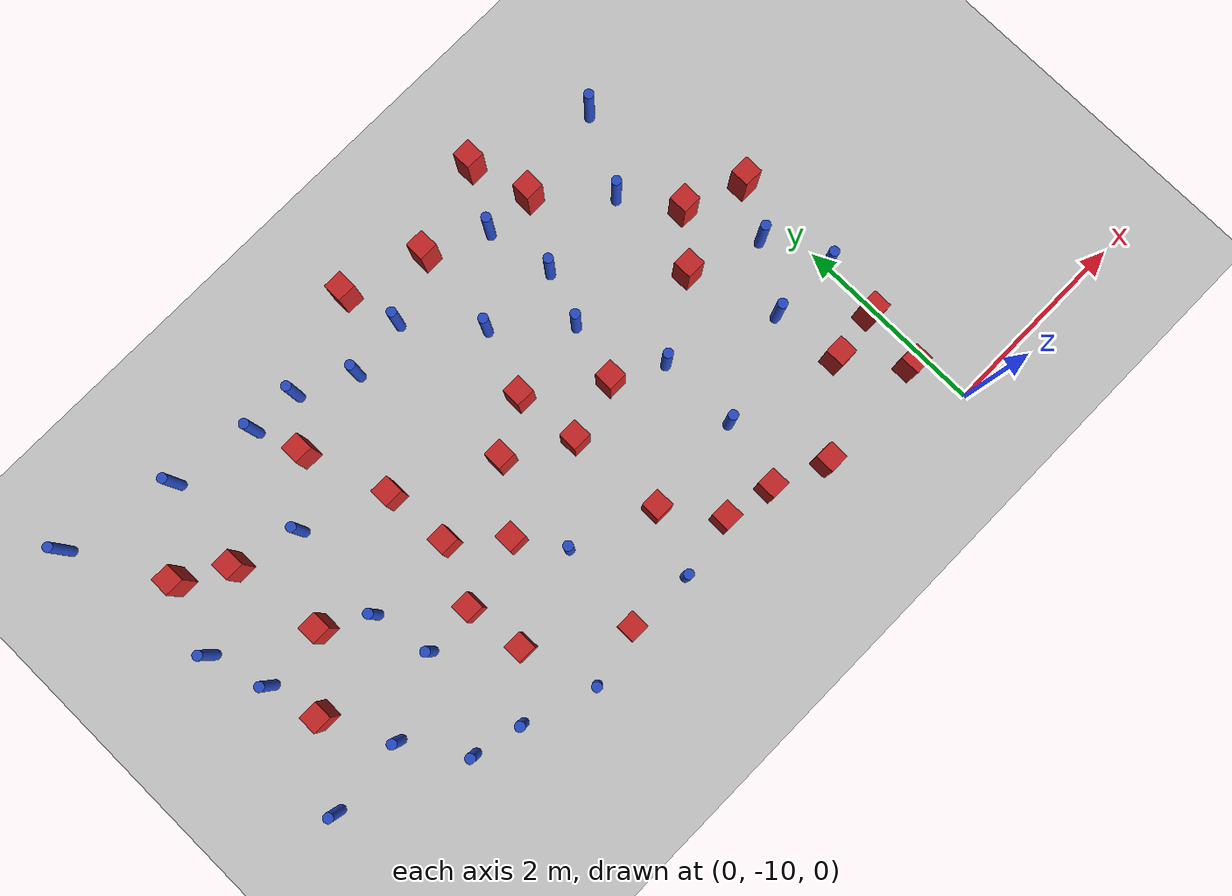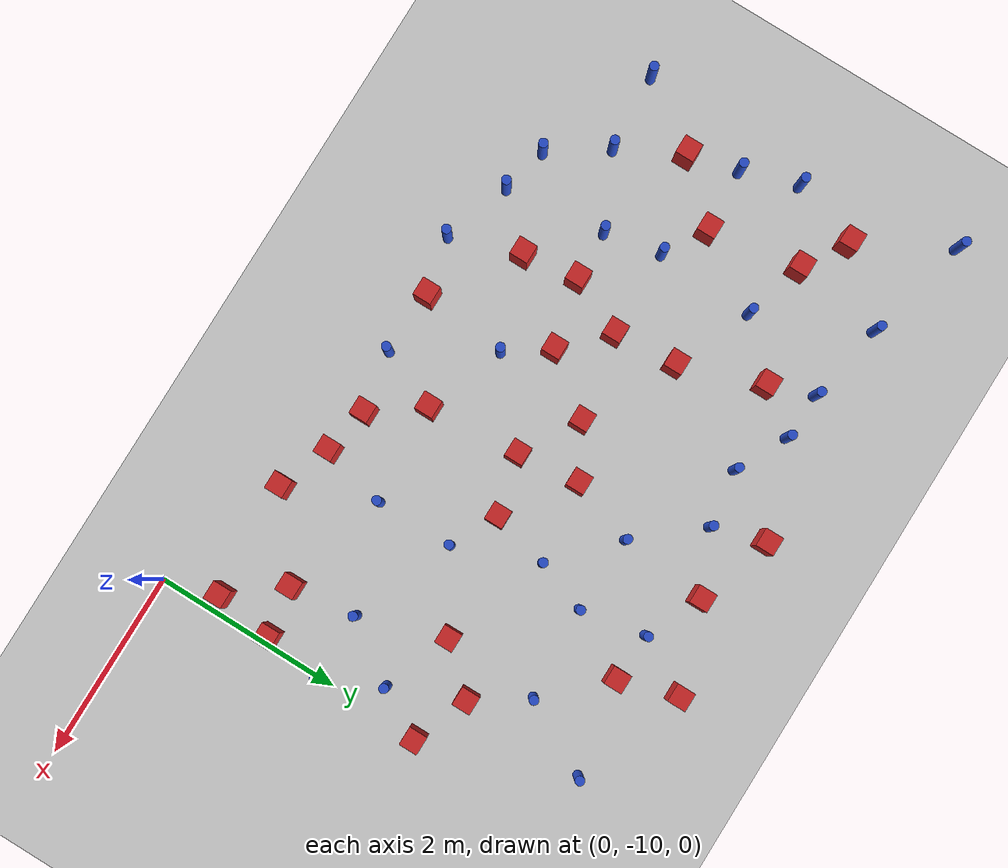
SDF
<sdf version="1.6">
 <world name="default">
  <model name="ground_plane">
   <static>1</static>
   <link name="link">
    <collision name="collision">
     <geometry><plane><normal>0 0 1</normal><size>100 100</size></plane></geometry>
     <surface><friction><ode><mu>100</mu><mu2>50</mu2></ode></friction></surface>
    </collision>
    <visual name="visual">
     <cast_shadows>0</cast_shadows>
     <geometry><plane><normal>0 0 1</normal><size>100 100</size></plane></geometry>
     <material>
      <ambient>1.0 1.0 1.0 1.0</ambient>
      <diffuse>0.8 0.8 0.8 1.0</diffuse>
      <specular>0.01 0.01 0.01 1.000000</specular>
     </material>
    </visual>
   </link>
  </model>
  <model name="pole_obstacle5">
   <static>true</static>
   <pose>-1.78726646543 -8.57034392381 2.88873142074e-08 -9.90536690474e-09 4.60219948974e-07 -1.2096599497e-07</pose>
   <link name="link">
    <pose>0 0 0.3 0 -0 0</pose>
    <inertial>
     <mass>1</mass>
     <inertia><ixx>0.145833</ixx><ixy>0</ixy><ixz>0</ixz><iyy>0.145833</iyy><iyz>0</iyz><izz>0.125</izz></inertia>
    </inertial>
    <collision name="collision">
     <geometry><cylinder><radius>0.05</radius><length>.6</length></cylinder></geometry>
    </collision>
    <visual name="visual">
     <geometry><cylinder><radius>0.05</radius><length>.6</length></cylinder></geometry>
     <material>
      <script><name>Gazebo/Blue</name><uri>file://media/materials/scripts/gazebo.material</uri></script>
     </material>
    </visual>
   </link>
  </model>
  <model name="square_post_obstacle4">
   <static>true</static>
   <pose>-2.64927681659 -5.37120156924 8.22691968438e-08 7.2212513382e-06 -7.54495500217e-07 2.29674213826e-05</pose>
   <link name="link">
    <pose>0 0 0.25 0 -0 0</pose>
    <inertial>
     <mass>100</mass>
     <inertia>
      <ixx>0.166667</ixx>
      <ixy>0</ixy>
      <ixz>0</ixz>
      <iyy>0.166667</iyy>
      <iyz>0</iyz>
      <izz>0.166667</izz>
     </inertia>
    </inertial>
    <collision name="collision"><geometry><box><size>.2 .2 .5</size></box></geometry></collision>
    <visual name="visual">
     <geometry><box><size>.2 .2 .5</size></box></geometry>
     <material>
      <script><name>Gazebo/Red</name><uri>file://media/materials/scripts/gazebo.material</uri></script>
     </material>
    </visual>
   </link>
  </model>
  <model name="square_post_obstacle7">
   <static>true</static>
   <pose>-4.49373699761 -6.79137119948 8.22691968438e-08 7.22125133819e-06 -7.54495500217e-07 2.29674213826e-05</pose>
   <link name="link">
    <pose>0 0 0.25 0 -0 0</pose>
    <inertial>
     <mass>100</mass>
     <inertia>
      <ixx>0.166667</ixx>
      <ixy>0</ixy>
      <ixz>0</ixz>
      <iyy>0.166667</iyy>
      <iyz>0</iyz>
      <izz>0.166667</izz>
     </inertia>
    </inertial>
    <collision name="collision"><geometry><box><size>.2 .2 .5</size></box></geometry></collision>
    <visual name="visual">
     <geometry><box><size>.2 .2 .5</size></box></geometry>
     <material>
      <script><name>Gazebo/Red</name><uri>file://media/materials/scripts/gazebo.material</uri></script>
     </material>
    </visual>
   </link>
  </model>
  <model name="square_post_obstacle13">
   <static>true</static>
   <pose>-2.84766875559 -8.64489960233 8.22691968438e-08 7.22125133819e-06 -7.54495500217e-07 2.29674213826e-05</pose>
   <link name="link">
    <pose>0 0 0.25 0 -0 0</pose>
    <inertial>
     <mass>100</mass>
     <inertia>
      <ixx>0.166667</ixx>
      <ixy>0</ixy>
      <ixz>0</ixz>
      <iyy>0.166667</iyy>
      <iyz>0</iyz>
      <izz>0.166667</izz>
     </inertia>
    </inertial>
    <collision name="collision"><geometry><box><size>.2 .2 .5</size></box></geometry></collision>
    <visual name="visual">
     <geometry><box><size>.2 .2 .5</size></box></geometry>
     <material>
      <script><name>Gazebo/Red</name><uri>file://media/materials/scripts/gazebo.material</uri></script>
     </material>
    </visual>
   </link>
  </model>
  <model name="pole_obstacle20">
   <static>true</static>
   <pose>-0.0221527292609 -8.1767219868 2.88873142074e-08 -9.90536690815e-09 4.60219948966e-07 -1.20965994976e-07</pose>
   <link name="link">
    <pose>0 0 0.3 0 -0 0</pose>
    <inertial>
     <mass>1</mass>
     <inertia><ixx>0.145833</ixx><ixy>0</ixy><ixz>0</ixz><iyy>0.145833</iyy><iyz>0</iyz><izz>0.125</izz></inertia>
    </inertial>
    <collision name="collision">
     <geometry><cylinder><radius>0.05</radius><length>.6</length></cylinder></geometry>
    </collision>
    <visual name="visual">
     <geometry><cylinder><radius>0.05</radius><length>.6</length></cylinder></geometry>
     <material>
      <script><name>Gazebo/Blue</name><uri>file://media/materials/scripts/gazebo.material</uri></script>
     </material>
    </visual>
   </link>
  </model>
  <model name="pole_obstacle27">
   <static>true</static>
   <pose>-4.45710686074 -5.468988799 2.88873142074e-08 -9.90536690842e-09 4.60219948965e-07 -1.20965994976e-07</pose>
   <link name="link">
    <pose>0 0 0.3 0 -0 0</pose>
    <inertial>
     <mass>1</mass>
     <inertia><ixx>0.145833</ixx><ixy>0</ixy><ixz>0</ixz><iyy>0.145833</iyy><iyz>0</iyz><izz>0.125</izz></inertia>
    </inertial>
    <collision name="collision">
     <geometry><cylinder><radius>0.05</radius><length>.6</length></cylinder></geometry>
    </collision>
    <visual name="visual">
     <geometry><cylinder><radius>0.05</radius><length>.6</length></cylinder></geometry>
     <material>
      <script><name>Gazebo/Blue</name><uri>file://media/materials/scripts/gazebo.material</uri></script>
     </material>
    </visual>
   </link>
  </model>
  <model name="pole_obstacle30">
   <static>true</static>
   <pose>-3.68928437434 -8.33382902715 2.88873142074e-08 -9.9053668994e-09 4.60219948987e-07 -1.20965994963e-07</pose>
   <link name="link">
    <pose>0 0 0.3 0 -0 0</pose>
    <inertial>
     <mass>1</mass>
     <inertia><ixx>0.145833</ixx><ixy>0</ixy><ixz>0</ixz><iyy>0.145833</iyy><iyz>0</iyz><izz>0.125</izz></inertia>
    </inertial>
    <collision name="collision">
     <geometry><cylinder><radius>0.05</radius><length>.6</length></cylinder></geometry>
    </collision>
    <visual name="visual">
     <geometry><cylinder><radius>0.05</radius><length>.6</length></cylinder></geometry>
     <material>
      <script><name>Gazebo/Blue</name><uri>file://media/materials/scripts/gazebo.material</uri></script>
     </material>
    </visual>
   </link>
  </model>
  <model name="square_post_obstacle36">
   <static>true</static>
   <pose>-5.96761669505 -6.24354475538 8.22691968438e-08 7.22125133819e-06 -7.54495500217e-07 2.29674213826e-05</pose>
   <link name="link">
    <pose>0 0 0.25 0 -0 0</pose>
    <inertial>
     <mass>100</mass>
     <inertia>
      <ixx>0.166667</ixx>
      <ixy>0</ixy>
      <ixz>0</ixz>
      <iyy>0.166667</iyy>
      <iyz>0</iyz>
      <izz>0.166667</izz>
     </inertia>
    </inertial>
    <collision name="collision"><geometry><box><size>.2 .2 .5</size></box></geometry></collision>
    <visual name="visual">
     <geometry><box><size>.2 .2 .5</size></box></geometry>
     <material>
      <script><name>Gazebo/Red</name><uri>file://media/materials/scripts/gazebo.material</uri></script>
     </material>
    </visual>
   </link>
  </model>
  <model name="pole_obstacle50">
   <static>true</static>
   <pose>-1.9275657077 -6.32983087907 2.88873142074e-08 -9.90536689852e-09 4.60219948989e-07 -1.2096599496e-07</pose>
   <link name="link">
    <pose>0 0 0.3 0 -0 0</pose>
    <inertial>
     <mass>1</mass>
     <inertia><ixx>0.145833</ixx><ixy>0</ixy><ixz>0</ixz><iyy>0.145833</iyy><iyz>0</iyz><izz>0.125</izz></inertia>
    </inertial>
    <collision name="collision">
     <geometry><cylinder><radius>0.05</radius><length>.6</length></cylinder></geometry>
    </collision>
    <visual name="visual">
     <geometry><cylinder><radius>0.05</radius><length>.6</length></cylinder></geometry>
     <material>
      <script><name>Gazebo/Blue</name><uri>file://media/materials/scripts/gazebo.material</uri></script>
     </material>
    </visual>
   </link>
  </model>
  <model name="pole_obstacle53">
   <static>true</static>
   <pose>-0.286057042579 -7.55070715802 2.88873142074e-08 -9.90536689618e-09 4.60219948994e-07 -1.20965994956e-07</pose>
   <link name="link">
    <pose>0 0 0.3 0 -0 0</pose>
    <inertial>
     <mass>1</mass>
     <inertia><ixx>0.145833</ixx><ixy>0</ixy><ixz>0</ixz><iyy>0.145833</iyy><iyz>0</iyz><izz>0.125</izz></inertia>
    </inertial>
    <collision name="collision">
     <geometry><cylinder><radius>0.05</radius><length>.6</length></cylinder></geometry>
    </collision>
    <visual name="visual">
     <geometry><cylinder><radius>0.05</radius><length>.6</length></cylinder></geometry>
     <material>
      <script><name>Gazebo/Blue</name><uri>file://media/materials/scripts/gazebo.material</uri></script>
     </material>
    </visual>
   </link>
  </model>
  <model name="square_post_obstacle40">
   <static>true</static>
   <pose>-1.01724898244 -7.2760087292 8.22691968438e-08 7.2212513382e-06 -7.54495500217e-07 2.29674213826e-05</pose>
   <link name="link">
    <pose>0 0 0.25 0 -0 0</pose>
    <inertial>
     <mass>100</mass>
     <inertia>
      <ixx>0.166667</ixx>
      <ixy>0</ixy>
      <ixz>0</ixz>
      <iyy>0.166667</iyy>
      <iyz>0</iyz>
      <izz>0.166667</izz>
     </inertia>
    </inertial>
    <collision name="collision"><geometry><box><size>.2 .2 .5</size></box></geometry></collision>
    <visual name="visual">
     <geometry><box><size>.2 .2 .5</size></box></geometry>
     <material>
      <script><name>Gazebo/Red</name><uri>file://media/materials/scripts/gazebo.material</uri></script>
     </material>
    </visual>
   </link>
  </model>
  <model name="pole_obstacle54">
   <static>true</static>
   <pose>-0.717264211662 -8.17333616447 2.88873142074e-08 -9.90536690779e-09 4.60219948967e-07 -1.20965994975e-07</pose>
   <link name="link">
    <pose>0 0 0.3 0 -0 0</pose>
    <inertial>
     <mass>1</mass>
     <inertia><ixx>0.145833</ixx><ixy>0</ixy><ixz>0</ixz><iyy>0.145833</iyy><iyz>0</iyz><izz>0.125</izz></inertia>
    </inertial>
    <collision name="collision">
     <geometry><cylinder><radius>0.05</radius><length>.6</length></cylinder></geometry>
    </collision>
    <visual name="visual">
     <geometry><cylinder><radius>0.05</radius><length>.6</length></cylinder></geometry>
     <material>
      <script><name>Gazebo/Blue</name><uri>file://media/materials/scripts/gazebo.material</uri></script>
     </material>
    </visual>
   </link>
  </model>
  <model name="pole_obstacle57">
   <static>true</static>
   <pose>-1.79224999366 -7.7479113219 2.88873142074e-08 -9.90536689852e-09 4.60219948989e-07 -1.2096599496e-07</pose>
   <link name="link">
    <pose>0 0 0.3 0 -0 0</pose>
    <inertial>
     <mass>1</mass>
     <inertia><ixx>0.145833</ixx><ixy>0</ixy><ixz>0</ixz><iyy>0.145833</iyy><iyz>0</iyz><izz>0.125</izz></inertia>
    </inertial>
    <collision name="collision">
     <geometry><cylinder><radius>0.05</radius><length>.6</length></cylinder></geometry>
    </collision>
    <visual name="visual">
     <geometry><cylinder><radius>0.05</radius><length>.6</length></cylinder></geometry>
     <material>
      <script><name>Gazebo/Blue</name><uri>file://media/materials/scripts/gazebo.material</uri></script>
     </material>
    </visual>
   </link>
  </model>
  <model name="pole_obstacle61">
   <static>true</static>
   <pose>-5.12103194588 -9.15279758318 2.88873142074e-08 -9.9053668967e-09 4.60219948993e-07 -1.20965994957e-07</pose>
   <link name="link">
    <pose>0 0 0.3 0 -0 0</pose>
    <inertial>
     <mass>1</mass>
     <inertia><ixx>0.145833</ixx><ixy>0</ixy><ixz>0</ixz><iyy>0.145833</iyy><iyz>0</iyz><izz>0.125</izz></inertia>
    </inertial>
    <collision name="collision">
     <geometry><cylinder><radius>0.05</radius><length>.6</length></cylinder></geometry>
    </collision>
    <visual name="visual">
     <geometry><cylinder><radius>0.05</radius><length>.6</length></cylinder></geometry>
     <material>
      <script><name>Gazebo/Blue</name><uri>file://media/materials/scripts/gazebo.material</uri></script>
     </material>
    </visual>
   </link>
  </model>
  <model name="pole_obstacle64">
   <static>true</static>
   <pose>-3.29987896596 -5.65960419358 2.88873142074e-08 -9.90536692062e-09 4.60219948937e-07 -1.20965994985e-07</pose>
   <link name="link">
    <pose>0 0 0.3 0 -0 0</pose>
    <inertial>
     <mass>1</mass>
     <inertia><ixx>0.145833</ixx><ixy>0</ixy><ixz>0</ixz><iyy>0.145833</iyy><iyz>0</iyz><izz>0.125</izz></inertia>
    </inertial>
    <collision name="collision">
     <geometry><cylinder><radius>0.05</radius><length>.6</length></cylinder></geometry>
    </collision>
    <visual name="visual">
     <geometry><cylinder><radius>0.05</radius><length>.6</length></cylinder></geometry>
     <material>
      <script><name>Gazebo/Blue</name><uri>file://media/materials/scripts/gazebo.material</uri></script>
     </material>
    </visual>
   </link>
  </model>
  <model name="pole_obstacle68">
   <static>true</static>
   <pose>-6.85162826499 -8.51102947927 2.88873142074e-08 -9.9053668967e-09 4.60219948993e-07 -1.20965994957e-07</pose>
   <link name="link">
    <pose>0 0 0.3 0 -0 0</pose>
    <inertial>
     <mass>1</mass>
     <inertia><ixx>0.145833</ixx><ixy>0</ixy><ixz>0</ixz><iyy>0.145833</iyy><iyz>0</iyz><izz>0.125</izz></inertia>
    </inertial>
    <collision name="collision">
     <geometry><cylinder><radius>0.05</radius><length>.6</length></cylinder></geometry>
    </collision>
    <visual name="visual">
     <geometry><cylinder><radius>0.05</radius><length>.6</length></cylinder></geometry>
     <material>
      <script><name>Gazebo/Blue</name><uri>file://media/materials/scripts/gazebo.material</uri></script>
     </material>
    </visual>
   </link>
  </model>
  <model name="square_post_obstacle59">
   <static>true</static>
   <pose>-0.595928623954 -6.8125351453 8.22691968438e-08 7.2212513382e-06 -7.54495500217e-07 2.29674213826e-05</pose>
   <link name="link">
    <pose>0 0 0.25 0 -0 0</pose>
    <inertial>
     <mass>100</mass>
     <inertia>
      <ixx>0.166667</ixx>
      <ixy>0</ixy>
      <ixz>0</ixz>
      <iyy>0.166667</iyy>
      <iyz>0</iyz>
      <izz>0.166667</izz>
     </inertia>
    </inertial>
    <collision name="collision"><geometry><box><size>.2 .2 .5</size></box></geometry></collision>
    <visual name="visual">
     <geometry><box><size>.2 .2 .5</size></box></geometry>
     <material>
      <script><name>Gazebo/Red</name><uri>file://media/materials/scripts/gazebo.material</uri></script>
     </material>
    </visual>
   </link>
  </model>
  <model name="square_post_obstacle60">
   <static>true</static>
   <pose>-1.41642675926 -9.47666286502 8.22691968438e-08 7.22125133819e-06 -7.54495500217e-07 2.29674213826e-05</pose>
   <link name="link">
    <pose>0 0 0.25 0 -0 0</pose>
    <inertial>
     <mass>100</mass>
     <inertia>
      <ixx>0.166667</ixx>
      <ixy>0</ixy>
      <ixz>0</ixz>
      <iyy>0.166667</iyy>
      <iyz>0</iyz>
      <izz>0.166667</izz>
     </inertia>
    </inertial>
    <collision name="collision"><geometry><box><size>.2 .2 .5</size></box></geometry></collision>
    <visual name="visual">
     <geometry><box><size>.2 .2 .5</size></box></geometry>
     <material>
      <script><name>Gazebo/Red</name><uri>file://media/materials/scripts/gazebo.material</uri></script>
     </material>
    </visual>
   </link>
  </model>
  <model name="pole_obstacle72">
   <static>true</static>
   <pose>-0.95234389062 -6.26087581918 2.88873142074e-08 -9.90536689644e-09 4.60219948994e-07 -1.20965994957e-07</pose>
   <link name="link">
    <pose>0 0 0.3 0 -0 0</pose>
    <inertial>
     <mass>1</mass>
     <inertia><ixx>0.145833</ixx><ixy>0</ixy><ixz>0</ixz><iyy>0.145833</iyy><iyz>0</iyz><izz>0.125</izz></inertia>
    </inertial>
    <collision name="collision">
     <geometry><cylinder><radius>0.05</radius><length>.6</length></cylinder></geometry>
    </collision>
    <visual name="visual">
     <geometry><cylinder><radius>0.05</radius><length>.6</length></cylinder></geometry>
     <material>
      <script><name>Gazebo/Blue</name><uri>file://media/materials/scripts/gazebo.material</uri></script>
     </material>
    </visual>
   </link>
  </model>
  <model name="pole_obstacle73">
   <static>true</static>
   <pose>-0.531199005573 -5.48281583149 2.88873142074e-08 -9.90536689526e-09 4.60219948997e-07 -1.20965994955e-07</pose>
   <link name="link">
    <pose>0 0 0.3 0 -0 0</pose>
    <inertial>
     <mass>1</mass>
     <inertia><ixx>0.145833</ixx><ixy>0</ixy><ixz>0</ixz><iyy>0.145833</iyy><iyz>0</iyz><izz>0.125</izz></inertia>
    </inertial>
    <collision name="collision">
     <geometry><cylinder><radius>0.05</radius><length>.6</length></cylinder></geometry>
    </collision>
    <visual name="visual">
     <geometry><cylinder><radius>0.05</radius><length>.6</length></cylinder></geometry>
     <material>
      <script><name>Gazebo/Blue</name><uri>file://media/materials/scripts/gazebo.material</uri></script>
     </material>
    </visual>
   </link>
  </model>
  <model name="square_post_obstacle79">
   <static>true</static>
   <pose>-4.63788020617 -8.65605632726 8.22691968438e-08 7.2212513382e-06 -7.54495500217e-07 2.29674213826e-05</pose>
   <link name="link">
    <pose>0 0 0.25 0 -0 0</pose>
    <inertial>
     <mass>100</mass>
     <inertia>
      <ixx>0.166667</ixx>
      <ixy>0</ixy>
      <ixz>0</ixz>
      <iyy>0.166667</iyy>
      <iyz>0</iyz>
      <izz>0.166667</izz>
     </inertia>
    </inertial>
    <collision name="collision"><geometry><box><size>.2 .2 .5</size></box></geometry></collision>
    <visual name="visual">
     <geometry><box><size>.2 .2 .5</size></box></geometry>
     <material>
      <script><name>Gazebo/Red</name><uri>file://media/materials/scripts/gazebo.material</uri></script>
     </material>
    </visual>
   </link>
  </model>
  <model name="square_post_obstacle85">
   <static>true</static>
   <pose>-0.195923285194 -9.41095889582 8.22691968438e-08 7.22125133819e-06 -7.54495500217e-07 2.29674213826e-05</pose>
   <link name="link">
    <pose>0 0 0.25 0 -0 0</pose>
    <inertial>
     <mass>100</mass>
     <inertia>
      <ixx>0.166667</ixx>
      <ixy>0</ixy>
      <ixz>0</ixz>
      <iyy>0.166667</iyy>
      <iyz>0</iyz>
      <izz>0.166667</izz>
     </inertia>
    </inertial>
    <collision name="collision"><geometry><box><size>.2 .2 .5</size></box></geometry></collision>
    <visual name="visual">
     <geometry><box><size>.2 .2 .5</size></box></geometry>
     <material>
      <script><name>Gazebo/Red</name><uri>file://media/materials/scripts/gazebo.material</uri></script>
     </material>
    </visual>
   </link>
  </model>
  <model name="square_post_obstacle88">
   <static>true</static>
   <pose>-2.91916548281 -7.65360300856 8.22691968438e-08 7.2212513382e-06 -7.54495500217e-07 2.29674213826e-05</pose>
   <link name="link">
    <pose>0 0 0.25 0 -0 0</pose>
    <inertial>
     <mass>100</mass>
     <inertia>
      <ixx>0.166667</ixx>
      <ixy>0</ixy>
      <ixz>0</ixz>
      <iyy>0.166667</iyy>
      <iyz>0</iyz>
      <izz>0.166667</izz>
     </inertia>
    </inertial>
    <collision name="collision"><geometry><box><size>.2 .2 .5</size></box></geometry></collision>
    <visual name="visual">
     <geometry><box><size>.2 .2 .5</size></box></geometry>
     <material>
      <script><name>Gazebo/Red</name><uri>file://media/materials/scripts/gazebo.material</uri></script>
     </material>
    </visual>
   </link>
  </model>
  <model name="square_post_obstacle100">
   <static>true</static>
   <pose>-2.29069919284 -7.49499953708 8.22691968438e-08 7.2212513382e-06 -7.54495500217e-07 2.29674213826e-05</pose>
   <link name="link">
    <pose>0 0 0.25 0 -0 0</pose>
    <inertial>
     <mass>100</mass>
     <inertia>
      <ixx>0.166667</ixx>
      <ixy>0</ixy>
      <ixz>0</ixz>
      <iyy>0.166667</iyy>
      <iyz>0</iyz>
      <izz>0.166667</izz>
     </inertia>
    </inertial>
    <collision name="collision"><geometry><box><size>.2 .2 .5</size></box></geometry></collision>
    <visual name="visual">
     <geometry><box><size>.2 .2 .5</size></box></geometry>
     <material>
      <script><name>Gazebo/Red</name><uri>file://media/materials/scripts/gazebo.material</uri></script>
     </material>
    </visual>
   </link>
  </model>
  <model name="square_post_obstacle102">
   <static>true</static>
   <pose>-4.44302540812 -7.46884796294 8.22691968438e-08 7.2212513382e-06 -7.54495500217e-07 2.29674213826e-05</pose>
   <link name="link">
    <pose>0 0 0.25 0 -0 0</pose>
    <inertial>
     <mass>100</mass>
     <inertia>
      <ixx>0.166667</ixx>
      <ixy>0</ixy>
      <ixz>0</ixz>
      <iyy>0.166667</iyy>
      <iyz>0</iyz>
      <izz>0.166667</izz>
     </inertia>
    </inertial>
    <collision name="collision"><geometry><box><size>.2 .2 .5</size></box></geometry></collision>
    <visual name="visual">
     <geometry><box><size>.2 .2 .5</size></box></geometry>
     <material>
      <script><name>Gazebo/Red</name><uri>file://media/materials/scripts/gazebo.material</uri></script>
     </material>
    </visual>
   </link>
  </model>
  <model name="pole_obstacle112">
   <static>true</static>
   <pose>-2.74954797711 -6.3024568471 2.88873142074e-08 -9.90536689859e-09 4.60219948989e-07 -1.20965994961e-07</pose>
   <link name="link">
    <pose>0 0 0.3 0 -0 0</pose>
    <inertial>
     <mass>1</mass>
     <inertia><ixx>0.145833</ixx><ixy>0</ixy><ixz>0</ixz><iyy>0.145833</iyy><iyz>0</iyz><izz>0.125</izz></inertia>
    </inertial>
    <collision name="collision">
     <geometry><cylinder><radius>0.05</radius><length>.6</length></cylinder></geometry>
    </collision>
    <visual name="visual">
     <geometry><cylinder><radius>0.05</radius><length>.6</length></cylinder></geometry>
     <material>
      <script><name>Gazebo/Blue</name><uri>file://media/materials/scripts/gazebo.material</uri></script>
     </material>
    </visual>
   </link>
  </model>
  <model name="square_post_obstacle109">
   <static>true</static>
   <pose>-6.44205687848 -5.95654921156 8.22691968438e-08 7.22125133819e-06 -7.54495500217e-07 2.29674213826e-05</pose>
   <link name="link">
    <pose>0 0 0.25 0 -0 0</pose>
    <inertial>
     <mass>100</mass>
     <inertia>
      <ixx>0.166667</ixx>
      <ixy>0</ixy>
      <ixz>0</ixz>
      <iyy>0.166667</iyy>
      <iyz>0</iyz>
      <izz>0.166667</izz>
     </inertia>
    </inertial>
    <collision name="collision"><geometry><box><size>.2 .2 .5</size></box></geometry></collision>
    <visual name="visual">
     <geometry><box><size>.2 .2 .5</size></box></geometry>
     <material>
      <script><name>Gazebo/Red</name><uri>file://media/materials/scripts/gazebo.material</uri></script>
     </material>
    </visual>
   </link>
  </model>
  <model name="pole_obstacle115">
   <static>true</static>
   <pose>-6.49521010486 -7.25992384798 2.88873142074e-08 -9.90536690842e-09 4.60219948965e-07 -1.20965994976e-07</pose>
   <link name="link">
    <pose>0 0 0.3 0 -0 0</pose>
    <inertial>
     <mass>1</mass>
     <inertia><ixx>0.145833</ixx><ixy>0</ixy><ixz>0</ixz><iyy>0.145833</iyy><iyz>0</iyz><izz>0.125</izz></inertia>
    </inertial>
    <collision name="collision">
     <geometry><cylinder><radius>0.05</radius><length>.6</length></cylinder></geometry>
    </collision>
    <visual name="visual">
     <geometry><cylinder><radius>0.05</radius><length>.6</length></cylinder></geometry>
     <material>
      <script><name>Gazebo/Blue</name><uri>file://media/materials/scripts/gazebo.material</uri></script>
     </material>
    </visual>
   </link>
  </model>
  <model name="square_post_obstacle115">
   <static>true</static>
   <pose>-1.54281834119 -5.6677220599 8.22691968438e-08 7.2212513382e-06 -7.54495500217e-07 2.29674213826e-05</pose>
   <link name="link">
    <pose>0 0 0.25 0 -0 0</pose>
    <inertial>
     <mass>100</mass>
     <inertia>
      <ixx>0.166667</ixx>
      <ixy>0</ixy>
      <ixz>0</ixz>
      <iyy>0.166667</iyy>
      <iyz>0</iyz>
      <izz>0.166667</izz>
     </inertia>
    </inertial>
    <collision name="collision"><geometry><box><size>.2 .2 .5</size></box></geometry></collision>
    <visual name="visual">
     <geometry><box><size>.2 .2 .5</size></box></geometry>
     <material>
      <script><name>Gazebo/Red</name><uri>file://media/materials/scripts/gazebo.material</uri></script>
     </material>
    </visual>
   </link>
  </model>
  <model name="square_post_obstacle119">
   <static>true</static>
   <pose>-4.71379639862 -8.06445155726 8.22691968438e-08 7.2212513382e-06 -7.54495500217e-07 2.29674213826e-05</pose>
   <link name="link">
    <pose>0 0 0.25 0 -0 0</pose>
    <inertial>
     <mass>100</mass>
     <inertia>
      <ixx>0.166667</ixx>
      <ixy>0</ixy>
      <ixz>0</ixz>
      <iyy>0.166667</iyy>
      <iyz>0</iyz>
      <izz>0.166667</izz>
     </inertia>
    </inertial>
    <collision name="collision"><geometry><box><size>.2 .2 .5</size></box></geometry></collision>
    <visual name="visual">
     <geometry><box><size>.2 .2 .5</size></box></geometry>
     <material>
      <script><name>Gazebo/Red</name><uri>file://media/materials/scripts/gazebo.material</uri></script>
     </material>
    </visual>
   </link>
  </model>
  <model name="square_post_obstacle126">
   <static>true</static>
   <pose>-1.72193749303 -5.05431845268 8.22691968438e-08 7.2212513382e-06 -7.54495500217e-07 2.29674213826e-05</pose>
   <link name="link">
    <pose>0 0 0.25 0 -0 0</pose>
    <inertial>
     <mass>100</mass>
     <inertia>
      <ixx>0.166667</ixx>
      <ixy>0</ixy>
      <ixz>0</ixz>
      <iyy>0.166667</iyy>
      <iyz>0</iyz>
      <izz>0.166667</izz>
     </inertia>
    </inertial>
    <collision name="collision"><geometry><box><size>.2 .2 .5</size></box></geometry></collision>
    <visual name="visual">
     <geometry><box><size>.2 .2 .5</size></box></geometry>
     <material>
      <script><name>Gazebo/Red</name><uri>file://media/materials/scripts/gazebo.material</uri></script>
     </material>
    </visual>
   </link>
  </model>
  <model name="pole_obstacle134">
   <static>true</static>
   <pose>-6.02127767853 -8.45443405669 2.88873142074e-08 -9.9053668967e-09 4.60219948993e-07 -1.20965994957e-07</pose>
   <link name="link">
    <pose>0 0 0.3 0 -0 0</pose>
    <inertial>
     <mass>1</mass>
     <inertia><ixx>0.145833</ixx><ixy>0</ixy><ixz>0</ixz><iyy>0.145833</iyy><iyz>0</iyz><izz>0.125</izz></inertia>
    </inertial>
    <collision name="collision">
     <geometry><cylinder><radius>0.05</radius><length>.6</length></cylinder></geometry>
    </collision>
    <visual name="visual">
     <geometry><cylinder><radius>0.05</radius><length>.6</length></cylinder></geometry>
     <material>
      <script><name>Gazebo/Blue</name><uri>file://media/materials/scripts/gazebo.material</uri></script>
     </material>
    </visual>
   </link>
  </model>
  <model name="pole_obstacle137">
   <static>true</static>
   <pose>-5.82799132782 -5.27976468154 2.88873142074e-08 -9.90536690842e-09 4.60219948965e-07 -1.20965994976e-07</pose>
   <link name="link">
    <pose>0 0 0.3 0 -0 0</pose>
    <inertial>
     <mass>1</mass>
     <inertia><ixx>0.145833</ixx><ixy>0</ixy><ixz>0</ixz><iyy>0.145833</iyy><iyz>0</iyz><izz>0.125</izz></inertia>
    </inertial>
    <collision name="collision">
     <geometry><cylinder><radius>0.05</radius><length>.6</length></cylinder></geometry>
    </collision>
    <visual name="visual">
     <geometry><cylinder><radius>0.05</radius><length>.6</length></cylinder></geometry>
     <material>
      <script><name>Gazebo/Blue</name><uri>file://media/materials/scripts/gazebo.material</uri></script>
     </material>
    </visual>
   </link>
  </model>
  <model name="square_post_obstacle139">
   <static>true</static>
   <pose>-0.633275113699 -8.86526626329 8.22691968438e-08 7.22125133819e-06 -7.54495500217e-07 2.29674213826e-05</pose>
   <link name="link">
    <pose>0 0 0.25 0 -0 0</pose>
    <inertial>
     <mass>100</mass>
     <inertia>
      <ixx>0.166667</ixx>
      <ixy>0</ixy>
      <ixz>0</ixz>
      <iyy>0.166667</iyy>
      <iyz>0</iyz>
      <izz>0.166667</izz>
     </inertia>
    </inertial>
    <collision name="collision"><geometry><box><size>.2 .2 .5</size></box></geometry></collision>
    <visual name="visual">
     <geometry><box><size>.2 .2 .5</size></box></geometry>
     <material>
      <script><name>Gazebo/Red</name><uri>file://media/materials/scripts/gazebo.material</uri></script>
     </material>
    </visual>
   </link>
  </model>
  <model name="pole_obstacle143">
   <static>true</static>
   <pose>-2.05371557062 -5.64074215904 2.88873142074e-08 -9.90536689859e-09 4.60219948989e-07 -1.20965994961e-07</pose>
   <link name="link">
    <pose>0 0 0.3 0 -0 0</pose>
    <inertial>
     <mass>1</mass>
     <inertia><ixx>0.145833</ixx><ixy>0</ixy><ixz>0</ixz><iyy>0.145833</iyy><iyz>0</iyz><izz>0.125</izz></inertia>
    </inertial>
    <collision name="collision">
     <geometry><cylinder><radius>0.05</radius><length>.6</length></cylinder></geometry>
    </collision>
    <visual name="visual">
     <geometry><cylinder><radius>0.05</radius><length>.6</length></cylinder></geometry>
     <material>
      <script><name>Gazebo/Blue</name><uri>file://media/materials/scripts/gazebo.material</uri></script>
     </material>
    </visual>
   </link>
  </model>
  <model name="square_post_obstacle143">
   <static>true</static>
   <pose>-3.52903496974 -7.28763733693 8.22691968438e-08 7.2212513382e-06 -7.54495500217e-07 2.29674213826e-05</pose>
   <link name="link">
    <pose>0 0 0.25 0 -0 0</pose>
    <inertial>
     <mass>100</mass>
     <inertia>
      <ixx>0.166667</ixx>
      <ixy>0</ixy>
      <ixz>0</ixz>
      <iyy>0.166667</iyy>
      <iyz>0</iyz>
      <izz>0.166667</izz>
     </inertia>
    </inertial>
    <collision name="collision"><geometry><box><size>.2 .2 .5</size></box></geometry></collision>
    <visual name="visual">
     <geometry><box><size>.2 .2 .5</size></box></geometry>
     <material>
      <script><name>Gazebo/Red</name><uri>file://media/materials/scripts/gazebo.material</uri></script>
     </material>
    </visual>
   </link>
  </model>
  <model name="pole_obstacle154">
   <static>true</static>
   <pose>-3.91238405211 -5.74325259627 2.88873142074e-08 -9.90536692062e-09 4.60219948937e-07 -1.20965994985e-07</pose>
   <link name="link">
    <pose>0 0 0.3 0 -0 0</pose>
    <inertial>
     <mass>1</mass>
     <inertia><ixx>0.145833</ixx><ixy>0</ixy><ixz>0</ixz><iyy>0.145833</iyy><iyz>0</iyz><izz>0.125</izz></inertia>
    </inertial>
    <collision name="collision">
     <geometry><cylinder><radius>0.05</radius><length>.6</length></cylinder></geometry>
    </collision>
    <visual name="visual">
     <geometry><cylinder><radius>0.05</radius><length>.6</length></cylinder></geometry>
     <material>
      <script><name>Gazebo/Blue</name><uri>file://media/materials/scripts/gazebo.material</uri></script>
     </material>
    </visual>
   </link>
  </model>
  <model name="pole_obstacle155">
   <static>true</static>
   <pose>-2.12722961672 -6.87874400198 2.88873142074e-08 -9.90536689859e-09 4.60219948989e-07 -1.20965994961e-07</pose>
   <link name="link">
    <pose>0 0 0.3 0 -0 0</pose>
    <inertial>
     <mass>1</mass>
     <inertia><ixx>0.145833</ixx><ixy>0</ixy><ixz>0</ixz><iyy>0.145833</iyy><iyz>0</iyz><izz>0.125</izz></inertia>
    </inertial>
    <collision name="collision">
     <geometry><cylinder><radius>0.05</radius><length>.6</length></cylinder></geometry>
    </collision>
    <visual name="visual">
     <geometry><cylinder><radius>0.05</radius><length>.6</length></cylinder></geometry>
     <material>
      <script><name>Gazebo/Blue</name><uri>file://media/materials/scripts/gazebo.material</uri></script>
     </material>
    </visual>
   </link>
  </model>
  <model name="pole_obstacle160">
   <static>true</static>
   <pose>-3.11106362175 -9.28600599837 2.88873142074e-08 -9.9053668994e-09 4.60219948987e-07 -1.20965994963e-07</pose>
   <link name="link">
    <pose>0 0 0.3 0 -0 0</pose>
    <inertial>
     <mass>1</mass>
     <inertia><ixx>0.145833</ixx><ixy>0</ixy><ixz>0</ixz><iyy>0.145833</iyy><iyz>0</iyz><izz>0.125</izz></inertia>
    </inertial>
    <collision name="collision">
     <geometry><cylinder><radius>0.05</radius><length>.6</length></cylinder></geometry>
    </collision>
    <visual name="visual">
     <geometry><cylinder><radius>0.05</radius><length>.6</length></cylinder></geometry>
     <material>
      <script><name>Gazebo/Blue</name><uri>file://media/materials/scripts/gazebo.material</uri></script>
     </material>
    </visual>
   </link>
  </model>
  <model name="square_post_obstacle154">
   <static>true</static>
   <pose>-2.47055233747 -9.16478746139 8.22691968438e-08 7.22125133819e-06 -7.54495500217e-07 2.29674213826e-05</pose>
   <link name="link">
    <pose>0 0 0.25 0 -0 0</pose>
    <inertial>
     <mass>100</mass>
     <inertia>
      <ixx>0.166667</ixx>
      <ixy>0</ixy>
      <ixz>0</ixz>
      <iyy>0.166667</iyy>
      <iyz>0</iyz>
      <izz>0.166667</izz>
     </inertia>
    </inertial>
    <collision name="collision"><geometry><box><size>.2 .2 .5</size></box></geometry></collision>
    <visual name="visual">
     <geometry><box><size>.2 .2 .5</size></box></geometry>
     <material>
      <script><name>Gazebo/Red</name><uri>file://media/materials/scripts/gazebo.material</uri></script>
     </material>
    </visual>
   </link>
  </model>
  <model name="square_post_obstacle155">
   <static>true</static>
   <pose>-3.79254225106 -9.25005747221 8.22691968438e-08 7.22125133819e-06 -7.54495500217e-07 2.29674213826e-05</pose>
   <link name="link">
    <pose>0 0 0.25 0 -0 0</pose>
    <inertial>
     <mass>100</mass>
     <inertia>
      <ixx>0.166667</ixx>
      <ixy>0</ixy>
      <ixz>0</ixz>
      <iyy>0.166667</iyy>
      <iyz>0</iyz>
      <izz>0.166667</izz>
     </inertia>
    </inertial>
    <collision name="collision"><geometry><box><size>.2 .2 .5</size></box></geometry></collision>
    <visual name="visual">
     <geometry><box><size>.2 .2 .5</size></box></geometry>
     <material>
      <script><name>Gazebo/Red</name><uri>file://media/materials/scripts/gazebo.material</uri></script>
     </material>
    </visual>
   </link>
  </model>
  <model name="square_post_obstacle158">
   <static>true</static>
   <pose>-2.99124895911 -6.9928365161 8.22691968438e-08 7.2212513382e-06 -7.54495500217e-07 2.29674213826e-05</pose>
   <link name="link">
    <pose>0 0 0.25 0 -0 0</pose>
    <inertial>
     <mass>100</mass>
     <inertia>
      <ixx>0.166667</ixx>
      <ixy>0</ixy>
      <ixz>0</ixz>
      <iyy>0.166667</iyy>
      <iyz>0</iyz>
      <izz>0.166667</izz>
     </inertia>
    </inertial>
    <collision name="collision"><geometry><box><size>.2 .2 .5</size></box></geometry></collision>
    <visual name="visual">
     <geometry><box><size>.2 .2 .5</size></box></geometry>
     <material>
      <script><name>Gazebo/Red</name><uri>file://media/materials/scripts/gazebo.material</uri></script>
     </material>
    </visual>
   </link>
  </model>
  <model name="pole_obstacle166">
   <static>true</static>
   <pose>-4.96732719921 -5.44553605316 2.88873142074e-08 -9.90536690842e-09 4.60219948965e-07 -1.20965994976e-07</pose>
   <link name="link">
    <pose>0 0 0.3 0 -0 0</pose>
    <inertial>
     <mass>1</mass>
     <inertia><ixx>0.145833</ixx><ixy>0</ixy><ixz>0</ixz><iyy>0.145833</iyy><iyz>0</iyz><izz>0.125</izz></inertia>
    </inertial>
    <collision name="collision">
     <geometry><cylinder><radius>0.05</radius><length>.6</length></cylinder></geometry>
    </collision>
    <visual name="visual">
     <geometry><cylinder><radius>0.05</radius><length>.6</length></cylinder></geometry>
     <material>
      <script><name>Gazebo/Blue</name><uri>file://media/materials/scripts/gazebo.material</uri></script>
     </material>
    </visual>
   </link>
  </model>
  <model name="square_post_obstacle172">
   <static>true</static>
   <pose>-5.81314047226 -7.21545228591 8.22691968438e-08 7.2212513382e-06 -7.54495500217e-07 2.29674213826e-05</pose>
   <link name="link">
    <pose>0 0 0.25 0 -0 0</pose>
    <inertial>
     <mass>100</mass>
     <inertia>
      <ixx>0.166667</ixx>
      <ixy>0</ixy>
      <ixz>0</ixz>
      <iyy>0.166667</iyy>
      <iyz>0</iyz>
      <izz>0.166667</izz>
     </inertia>
    </inertial>
    <collision name="collision"><geometry><box><size>.2 .2 .5</size></box></geometry></collision>
    <visual name="visual">
     <geometry><box><size>.2 .2 .5</size></box></geometry>
     <material>
      <script><name>Gazebo/Red</name><uri>file://media/materials/scripts/gazebo.material</uri></script>
     </material>
    </visual>
   </link>
  </model>
  <model name="pole_obstacle179">
   <static>true</static>
   <pose>-4.39914675466 -9.3967464222 2.88873142074e-08 -9.9053668967e-09 4.60219948993e-07 -1.20965994957e-07</pose>
   <link name="link">
    <pose>0 0 0.3 0 -0 0</pose>
    <inertial>
     <mass>1</mass>
     <inertia><ixx>0.145833</ixx><ixy>0</ixy><ixz>0</ixz><iyy>0.145833</iyy><iyz>0</iyz><izz>0.125</izz></inertia>
    </inertial>
    <collision name="collision">
     <geometry><cylinder><radius>0.05</radius><length>.6</length></cylinder></geometry>
    </collision>
    <visual name="visual">
     <geometry><cylinder><radius>0.05</radius><length>.6</length></cylinder></geometry>
     <material>
      <script><name>Gazebo/Blue</name><uri>file://media/materials/scripts/gazebo.material</uri></script>
     </material>
    </visual>
   </link>
  </model>
  <model name="square_post_obstacle176">
   <static>true</static>
   <pose>-4.79153464925 -5.92021013474 8.22691968438e-08 7.2212513382e-06 -7.54495500217e-07 2.29674213826e-05</pose>
   <link name="link">
    <pose>0 0 0.25 0 -0 0</pose>
    <inertial>
     <mass>100</mass>
     <inertia>
      <ixx>0.166667</ixx>
      <ixy>0</ixy>
      <ixz>0</ixz>
      <iyy>0.166667</iyy>
      <iyz>0</iyz>
      <izz>0.166667</izz>
     </inertia>
    </inertial>
    <collision name="collision"><geometry><box><size>.2 .2 .5</size></box></geometry></collision>
    <visual name="visual">
     <geometry><box><size>.2 .2 .5</size></box></geometry>
     <material>
      <script><name>Gazebo/Red</name><uri>file://media/materials/scripts/gazebo.material</uri></script>
     </material>
    </visual>
   </link>
  </model>
  <model name="square_post_obstacle177">
   <static>true</static>
   <pose>-3.99226706532 -7.89301668151 8.22691968438e-08 7.22125133819e-06 -7.54495500217e-07 2.29674213826e-05</pose>
   <link name="link">
    <pose>0 0 0.25 0 -0 0</pose>
    <inertial>
     <mass>100</mass>
     <inertia>
      <ixx>0.166667</ixx>
      <ixy>0</ixy>
      <ixz>0</ixz>
      <iyy>0.166667</iyy>
      <iyz>0</iyz>
      <izz>0.166667</izz>
     </inertia>
    </inertial>
    <collision name="collision"><geometry><box><size>.2 .2 .5</size></box></geometry></collision>
    <visual name="visual">
     <geometry><box><size>.2 .2 .5</size></box></geometry>
     <material>
      <script><name>Gazebo/Red</name><uri>file://media/materials/scripts/gazebo.material</uri></script>
     </material>
    </visual>
   </link>
  </model>
  <model name="square_post_obstacle183">
   <static>true</static>
   <pose>-0.00133807435727 -7.04475117798 8.22691968438e-08 7.2212513382e-06 -7.54495500217e-07 2.29674213826e-05</pose>
   <link name="link">
    <pose>0 0 0.25 0 -0 0</pose>
    <inertial>
     <mass>100</mass>
     <inertia>
      <ixx>0.166667</ixx>
      <ixy>0</ixy>
      <ixz>0</ixz>
      <iyy>0.166667</iyy>
      <iyz>0</iyz>
      <izz>0.166667</izz>
     </inertia>
    </inertial>
    <collision name="collision"><geometry><box><size>.2 .2 .5</size></box></geometry></collision>
    <visual name="visual">
     <geometry><box><size>.2 .2 .5</size></box></geometry>
     <material>
      <script><name>Gazebo/Red</name><uri>file://media/materials/scripts/gazebo.material</uri></script>
     </material>
    </visual>
   </link>
  </model>
  <model name="pole_obstacle186">
   <static>true</static>
   <pose>-6.69090166923 -6.66704206979 2.88873142074e-08 -9.90536690842e-09 4.60219948965e-07 -1.20965994976e-07</pose>
   <link name="link">
    <pose>0 0 0.3 0 -0 0</pose>
    <inertial>
     <mass>1</mass>
     <inertia><ixx>0.145833</ixx><ixy>0</ixy><ixz>0</ixz><iyy>0.145833</iyy><iyz>0</iyz><izz>0.125</izz></inertia>
    </inertial>
    <collision name="collision">
     <geometry><cylinder><radius>0.05</radius><length>.6</length></cylinder></geometry>
    </collision>
    <visual name="visual">
     <geometry><cylinder><radius>0.05</radius><length>.6</length></cylinder></geometry>
     <material>
      <script><name>Gazebo/Blue</name><uri>file://media/materials/scripts/gazebo.material</uri></script>
     </material>
    </visual>
   </link>
  </model>
  <model name="square_post_obstacle187">
   <static>true</static>
   <pose>-6.35550706852 -7.79293496976 8.22691968438e-08 7.2212513382e-06 -7.54495500217e-07 2.29674213826e-05</pose>
   <link name="link">
    <pose>0 0 0.25 0 -0 0</pose>
    <inertial>
     <mass>100</mass>
     <inertia>
      <ixx>0.166667</ixx>
      <ixy>0</ixy>
      <ixz>0</ixz>
      <iyy>0.166667</iyy>
      <iyz>0</iyz>
      <izz>0.166667</izz>
     </inertia>
    </inertial>
    <collision name="collision"><geometry><box><size>.2 .2 .5</size></box></geometry></collision>
    <visual name="visual">
     <geometry><box><size>.2 .2 .5</size></box></geometry>
     <material>
      <script><name>Gazebo/Red</name><uri>file://media/materials/scripts/gazebo.material</uri></script>
     </material>
    </visual>
   </link>
  </model>
  <model name="square_post_obstacle193">
   <static>true</static>
   <pose>-0.100208705263 -8.79506706047 8.22691968438e-08 7.2212513382e-06 -7.54495500217e-07 2.29674213826e-05</pose>
   <link name="link">
    <pose>0 0 0.25 0 -0 0</pose>
    <inertial>
     <mass>100</mass>
     <inertia>
      <ixx>0.166667</ixx>
      <ixy>0</ixy>
      <ixz>0</ixz>
      <iyy>0.166667</iyy>
      <iyz>0</iyz>
      <izz>0.166667</izz>
     </inertia>
    </inertial>
    <collision name="collision"><geometry><box><size>.2 .2 .5</size></box></geometry></collision>
    <visual name="visual">
     <geometry><box><size>.2 .2 .5</size></box></geometry>
     <material>
      <script><name>Gazebo/Red</name><uri>file://media/materials/scripts/gazebo.material</uri></script>
     </material>
    </visual>
   </link>
  </model>
  <model name="pole_obstacle188">
   <static>true</static>
   <pose>-5.31783826131 -6.43278858896 2.88873142074e-08 -9.90536690842e-09 4.60219948965e-07 -1.20965994976e-07</pose>
   <link name="link">
    <pose>0 0 0.3 0 -0 0</pose>
    <inertial>
     <mass>1</mass>
     <inertia><ixx>0.145833</ixx><ixy>0</ixy><ixz>0</ixz><iyy>0.145833</iyy><iyz>0</iyz><izz>0.125</izz></inertia>
    </inertial>
    <collision name="collision">
     <geometry><cylinder><radius>0.05</radius><length>.6</length></cylinder></geometry>
    </collision>
    <visual name="visual">
     <geometry><cylinder><radius>0.05</radius><length>.6</length></cylinder></geometry>
     <material>
      <script><name>Gazebo/Blue</name><uri>file://media/materials/scripts/gazebo.material</uri></script>
     </material>
    </visual>
   </link>
  </model>
  <model name="square_post_obstacle199">
   <static>true</static>
   <pose>-1.96592728711 -9.26217016096 8.22691968438e-08 7.22125133819e-06 -7.54495500217e-07 2.29674213826e-05</pose>
   <link name="link">
    <pose>0 0 0.25 0 -0 0</pose>
    <inertial>
     <mass>100</mass>
     <inertia>
      <ixx>0.166667</ixx>
      <ixy>0</ixy>
      <ixz>0</ixz>
      <iyy>0.166667</iyy>
      <iyz>0</iyz>
      <izz>0.166667</izz>
     </inertia>
    </inertial>
    <collision name="collision"><geometry><box><size>.2 .2 .5</size></box></geometry></collision>
    <visual name="visual">
     <geometry><box><size>.2 .2 .5</size></box></geometry>
     <material>
      <script><name>Gazebo/Red</name><uri>file://media/materials/scripts/gazebo.material</uri></script>
     </material>
    </visual>
   </link>
  </model>
  <model name="square_post_obstacle203">
   <static>true</static>
   <pose>-3.45892759871 -5.10882825784 8.22691968438e-08 7.2212513382e-06 -7.54495500217e-07 2.29674213826e-05</pose>
   <link name="link">
    <pose>0 0 0.25 0 -0 0</pose>
    <inertial>
     <mass>100</mass>
     <inertia>
      <ixx>0.166667</ixx>
      <ixy>0</ixy>
      <ixz>0</ixz>
      <iyy>0.166667</iyy>
      <iyz>0</iyz>
      <izz>0.166667</izz>
     </inertia>
    </inertial>
    <collision name="collision"><geometry><box><size>.2 .2 .5</size></box></geometry></collision>
    <visual name="visual">
     <geometry><box><size>.2 .2 .5</size></box></geometry>
     <material>
      <script><name>Gazebo/Red</name><uri>file://media/materials/scripts/gazebo.material</uri></script>
     </material>
    </visual>
   </link>
  </model>
  <model name="pole_obstacle211">
   <static>true</static>
   <pose>-5.37157115114 -7.48430578187 2.88873142074e-08 -9.90536690842e-09 4.60219948965e-07 -1.20965994976e-07</pose>
   <link name="link">
    <pose>0 0 0.3 0 -0 0</pose>
    <inertial>
     <mass>1</mass>
     <inertia><ixx>0.145833</ixx><ixy>0</ixy><ixz>0</ixz><iyy>0.145833</iyy><iyz>0</iyz><izz>0.125</izz></inertia>
    </inertial>
    <collision name="collision">
     <geometry><cylinder><radius>0.05</radius><length>.6</length></cylinder></geometry>
    </collision>
    <visual name="visual">
     <geometry><cylinder><radius>0.05</radius><length>.6</length></cylinder></geometry>
     <material>
      <script><name>Gazebo/Blue</name><uri>file://media/materials/scripts/gazebo.material</uri></script>
     </material>
    </visual>
   </link>
  </model>
  <model name="pole_obstacle212">
   <static>true</static>
   <pose>-6.97496999087 -5.00313997959 2.88873142074e-08 -9.90536690842e-09 4.60219948965e-07 -1.20965994976e-07</pose>
   <link name="link">
    <pose>0 0 0.3 0 -0 0</pose>
    <inertial>
     <mass>1</mass>
     <inertia><ixx>0.145833</ixx><ixy>0</ixy><ixz>0</ixz><iyy>0.145833</iyy><iyz>0</iyz><izz>0.125</izz></inertia>
    </inertial>
    <collision name="collision">
     <geometry><cylinder><radius>0.05</radius><length>.6</length></cylinder></geometry>
    </collision>
    <visual name="visual">
     <geometry><cylinder><radius>0.05</radius><length>.6</length></cylinder></geometry>
     <material>
      <script><name>Gazebo/Blue</name><uri>file://media/materials/scripts/gazebo.material</uri></script>
     </material>
    </visual>
   </link>
  </model>
  <model name="pole_obstacle216">
   <static>true</static>
   <pose>-5.25044999087 -8.08756997959 2.88873142074e-08 -9.9053668967e-09 4.60219948993e-07 -1.20965994957e-07</pose>
   <link name="link">
    <pose>0 0 0.3 0 -0 0</pose>
    <inertial>
     <mass>1</mass>
     <inertia><ixx>0.145833</ixx><ixy>0</ixy><ixz>0</ixz><iyy>0.145833</iyy><iyz>0</iyz><izz>0.125</izz></inertia>
    </inertial>
    <collision name="collision">
     <geometry><cylinder><radius>0.05</radius><length>.6</length></cylinder></geometry>
    </collision>
    <visual name="visual">
     <geometry><cylinder><radius>0.05</radius><length>.6</length></cylinder></geometry>
     <material>
      <script><name>Gazebo/Blue</name><uri>file://media/materials/scripts/gazebo.material</uri></script>
     </material>
    </visual>
   </link>
  </model>
  <model name="pole_obstacle221">
   <static>true</static>
   <pose>-5.62374999087 -9.03573997959 2.88873142074e-08 -9.9053668967e-09 4.60219948993e-07 -1.20965994957e-07</pose>
   <link name="link">
    <pose>0 0 0.3 0 -0 0</pose>
    <inertial>
     <mass>1</mass>
     <inertia><ixx>0.145833</ixx><ixy>0</ixy><ixz>0</ixz><iyy>0.145833</iyy><iyz>0</iyz><izz>0.125</izz></inertia>
    </inertial>
    <collision name="collision">
     <geometry><cylinder><radius>0.05</radius><length>.6</length></cylinder></geometry>
    </collision>
    <visual name="visual">
     <geometry><cylinder><radius>0.05</radius><length>.6</length></cylinder></geometry>
     <material>
      <script><name>Gazebo/Blue</name><uri>file://media/materials/scripts/gazebo.material</uri></script>
     </material>
    </visual>
   </link>
  </model>
 </world>
</sdf>
